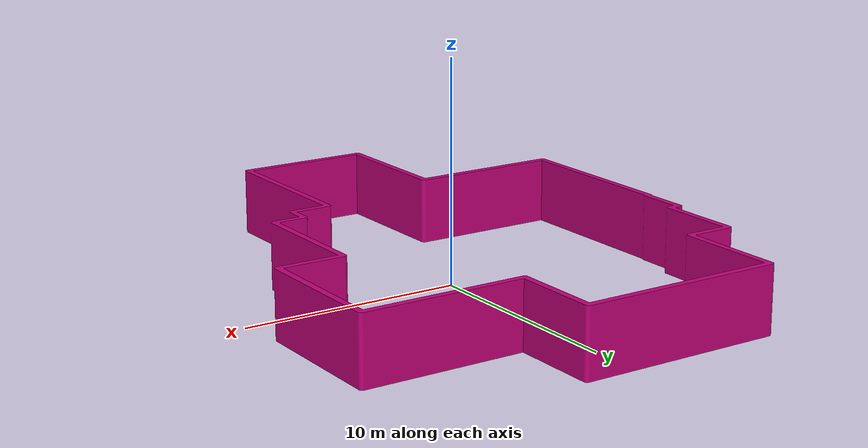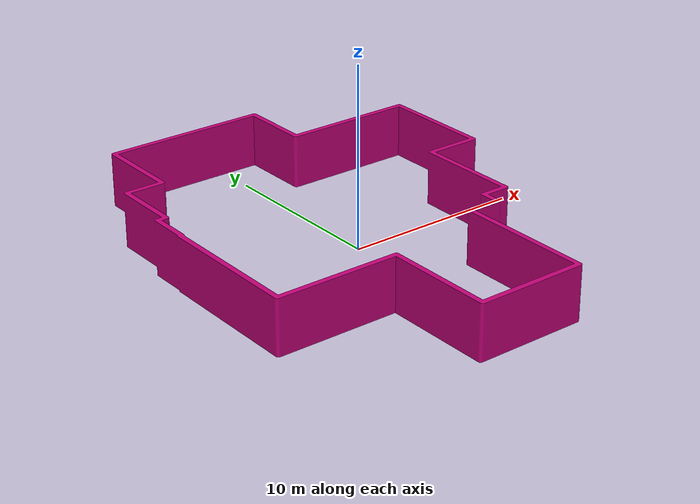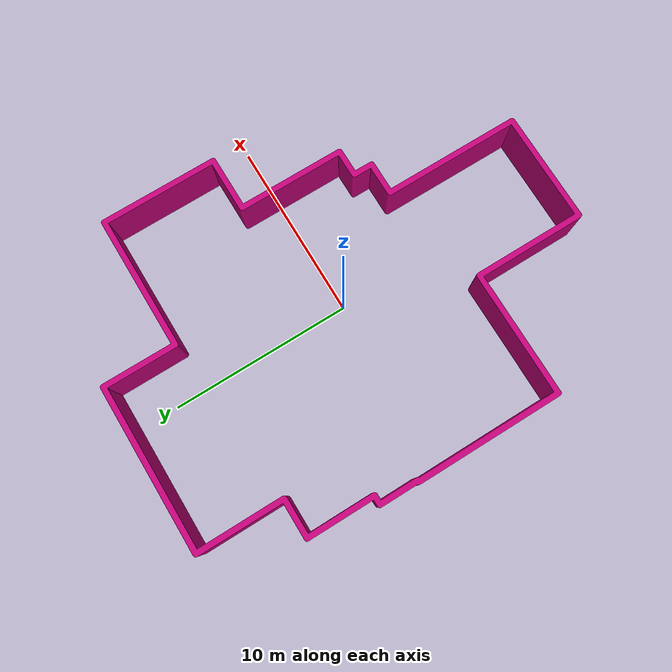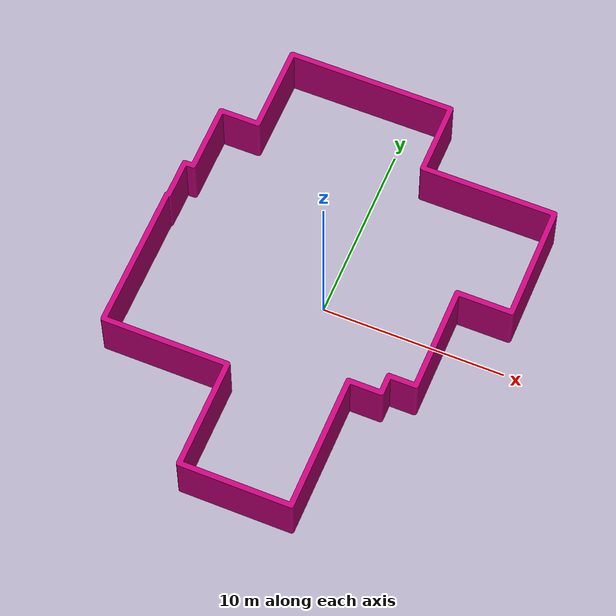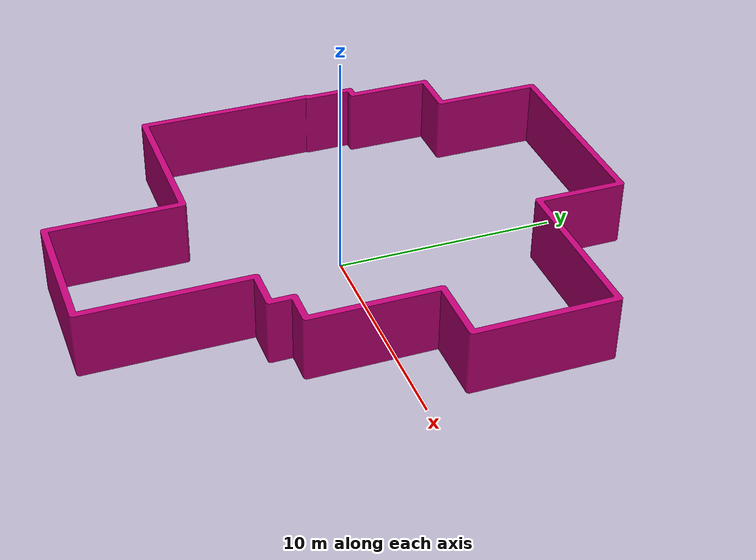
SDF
<?xml version="1.0" ?>
<sdf version="1.6">
  <model name="walls_11">
    <pose frame="">0 0 1.5 0 -0 0</pose>
    <static>1</static>
    <self_collide>0</self_collide>
    <allow_auto_disable>0</allow_auto_disable>
    <link name="mesh">
      <kinematic>0</kinematic>
      <gravity>1</gravity>
      <self_collide>0</self_collide>
      <collision name="collision">
        <geometry>
          <mesh>
            <uri>model://walls_11/meshes/FAePmYIgPl.stl</uri>
            <scale>1 1 1</scale>
          </mesh>
        </geometry>
        <pose frame="">3.48871 2.37256 -1.5 0 -0 0</pose>
        <max_contacts>20</max_contacts>
      </collision>
      <visual name="visual">
        <geometry>
          <mesh>
            <uri>model://walls_11/meshes/RSPmttjdyt.stl</uri>
            <scale>1 1 1</scale>
          </mesh>
        </geometry>
        <material>
          <ambient>0.760784 0 0.470588 1</ambient>
          <diffuse>0.7607843137254902 0.0 0.47058823529411764 1</diffuse>
        </material>
        <pose frame="">3.48871 2.37256 -1.5 0 -0 0</pose>
        <cast_shadows>1</cast_shadows>
        <transparency>0.0</transparency>
      </visual>
      <pose frame="">0 0 0 0 -0 0</pose>
    </link>
  </model>
</sdf>
